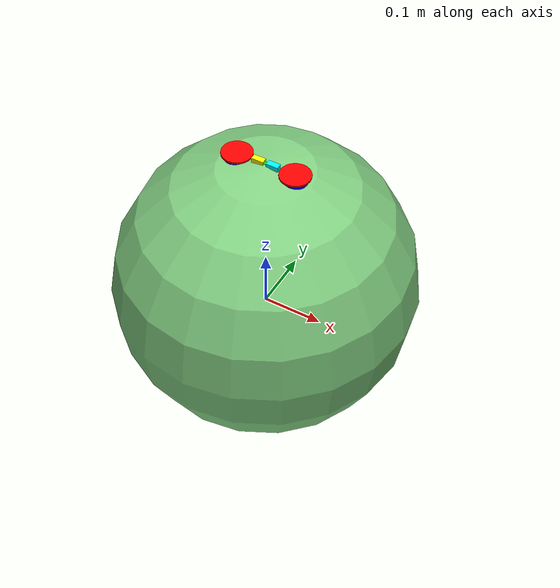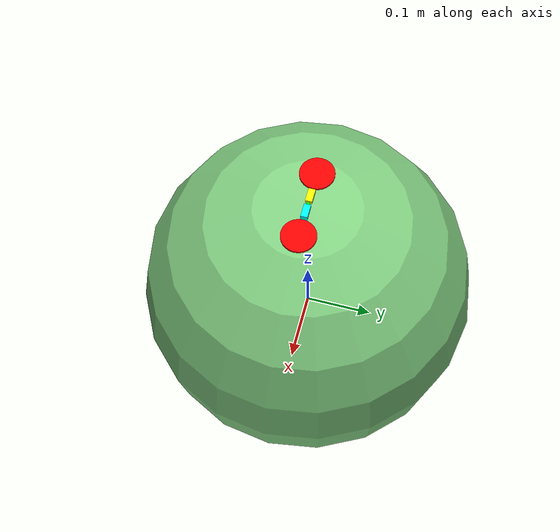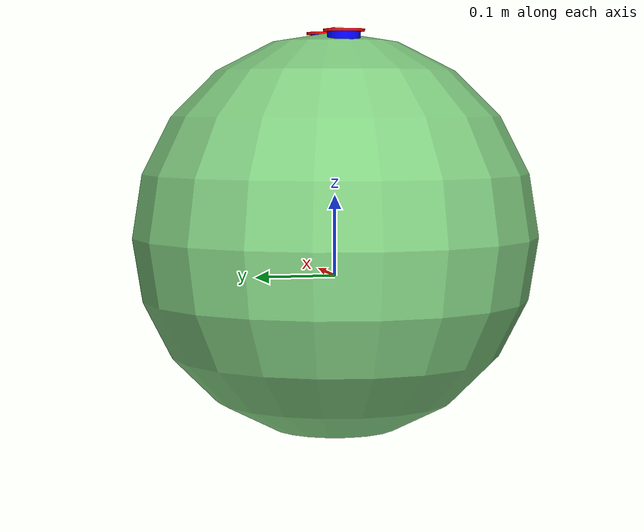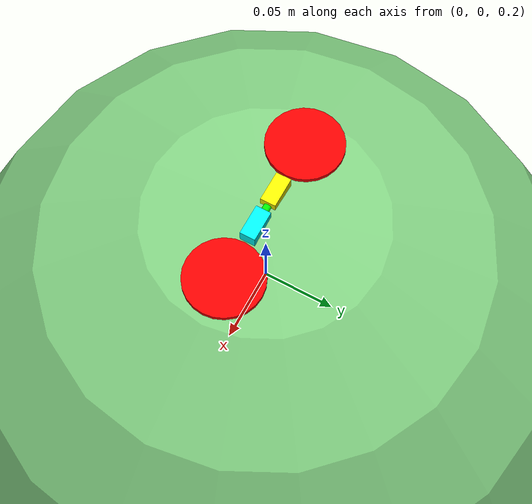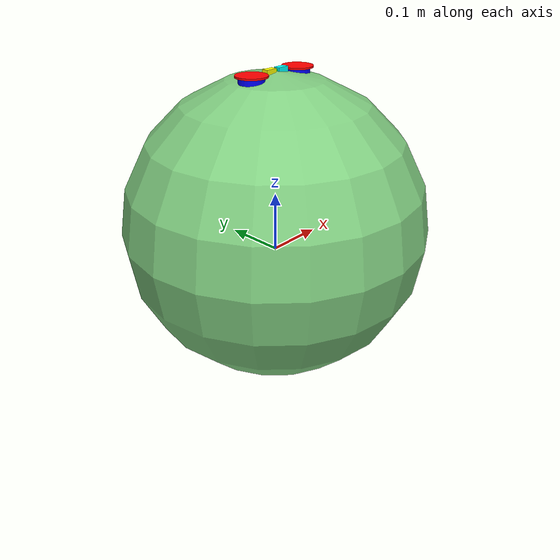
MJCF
<mujoco model="Active adhesion example">
	<!-- Adding some fluid viscosity to prevent the hanging sphere from jiggling too much. -->
	<option viscosity="1" />
	<size memory="10M" />
	<visual>
		<headlight diffuse=".2 .2 .2" />
		<scale contactwidth="0.1" jointwidth="0.05" jointlength=".5" />
	</visual>
	<default>
		<default class="active_adhesion">
			<geom rgba=".8 .5 .5 1" margin=".01" gap=".01" solref="0" solimp="0 1" friction=".5" />
		</default>
		<default class="object">
			<geom rgba=".5 .8 .5 1" density="1000" solref="0" solimp="0 1" friction=".5" />
		</default>
	</default>
	<worldbody>
		<light pos="0.4 -.15 .6" dir="-1 .5 -1" diffuse=".7 .7 .7" />
		<light pos="-.4 -.15 .6" dir="1 .5 -1" diffuse=".7 .7 .7" />
		<body name="Lappa" pos="0 0 .3">
			<joint name ="root" type="free" damping="0" />
			<geom type="capsule" fromto="-.0125 0 0 .0125 0 0" size=".0025" rgba="0 1 0 1" />
      <body name="arm">
        <geom type="capsule" fromto="-.0125 0 0 .0125 0 0" size=".0025" rgba="0 1 0 1" />
        <body name="a_arm" pos="-.0125 0 0">
          <geom type="box" size=".01 .005 .005" rgba="1 1 0 1" />
          <joint name="h3" type="hinge" pos=".0125 0 0" axis="1 0 0" limited="true" range="-90 90" stiffness="1" damping="2" />
        </body>
        <body name="b_arm" pos=".0125 0 0">
          <geom type="box" size=".01 .005 .005" rgba="0 1 1 1" />
        </body>
      </body>
			<body name="a_module" pos="-.05 0 0" euler="0 0 180">
				<geom name="a_house" type="cylinder" euler="0 0 90" size=".025 .0015" rgba="1 0 0 1" />
				<joint name="a_h2" type="hinge" pos="-.025 0 0" axis="0 1 0" limited="true" range="-45 45" damping="0" stiffness="0" />
        <site name="a_propeller" pos="0 0 -.0075" />
				<body name="a_chamber" pos="0 0 -.0015">
          <joint name="a_h1" type="hinge" axis="0 0 1" limited="true" range="-180 180" damping="0" />
					<site name="a_force_sensor" group="3" />
					<geom type="cylinder" fromto="0 0 0 0 0 -.02" size=".02" rgba="0 0 1 1" />
					<body name="a_vacuum" pos="0 0 -.019" childclass="active_adhesion">
					  <geom name="a_vacuum" type="box" size=".01 .01 .001" rgba="1 0 1 1" />
          </body>
				</body>
			</body>
      <body name="b_module" pos=".05 0 0" euler="0 0 180">
				<geom name="b_house" type="cylinder" euler="0 0 90" size=".025 .0015" rgba="1 0 0 1" />
				<joint name="b_h2" type="hinge" pos=".025 0 0" axis="0 1 0" limited="true" range="-45 45" damping="0" stiffness="0" />
				<joint name="b_h1" type="hinge" axis="0 0 1" limited="true" range="-180 180" damping="1" />
        <site name="b_propeller" pos="0 0 -.0075" />
				<body name="b_chamber" pos="0 0 -.0015" >
					<site name="b_force_sensor" group="3" />
					<geom type="cylinder" fromto="0 0 0 0 0 -.02" size=".02" rgba="0 0 1 1" />
          <body name="b_vacuum" pos="0 0 -.019" childclass="active_adhesion">
					  <geom name="b_vacuum" type="box" size=".01 .01 .001" rgba="1 0 1 1" />
          </body>
				</body>
			</body>
		</body>

		<body name="ground" pos="0 0 .05">
			<geom name="ground" size=".25 .25 .025" class="object" />
		</body>
	</worldbody>
  <equality>
    <connect body1="a_arm" body2="a_module" anchor="-.00625 0 0" />
    <connect body1="b_arm" body2="b_module" anchor=".00625 0 0" />
  </equality>
	<actuator>
		<motor name="a_thrust" site="a_propeller" ctrlrange="-1 1" ctrllimited="true" gear="0 0 1" />
		<motor name="b_thrust" site="b_propeller" ctrlrange="-1 1" ctrllimited="true" gear="0 0 1" />
		<motor name="a_h1" joint="a_h1" ctrlrange="-1 1" ctrllimited="true" gear="1" />
		<adhesion name="adhere_a" body="a_vacuum" ctrlrange="0 1" gain="10" />
		<adhesion name="adhere_b" body="b_vacuum" ctrlrange="0 1" gain="10" />
	</actuator>
	<sensor>
		<force site="a_force_sensor" />
		<force site="b_force_sensor" />
	</sensor>
</mujoco>
